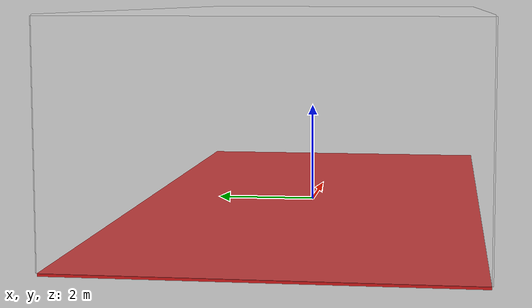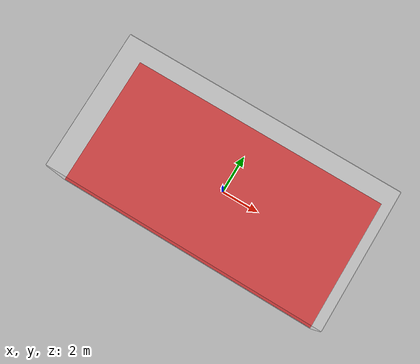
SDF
<!-- models/arena_walls/model.sdf -->
<sdf version="1.9">
  <model name="arena_walls">
    <static>true</static>

    <!-- Floor -->
    <link name="floor">
      <collision name="floor_col">
        <geometry><box><size>14 7 0.05</size></box></geometry>
      </collision>
      <visual name="floor_vis">
        <geometry><box><size>14 7 0.05</size></box></geometry>
        <material>
          <ambient>0.8 0.1 0.1 1</ambient>  <!-- red carpet -->
          <diffuse>0.8 0.1 0.1 1</diffuse>
        </material>
      </visual>
      <pose>0 0 -0.025 0 0 0</pose>
    </link>

    <!-- Ceiling (transparent, for realism) -->
    <link name="ceiling">
      <pose>0 0 4 0 0 0</pose>
      <collision name="ceiling_col">
        <geometry><box><size>14 7 0.05</size></box></geometry>
      </collision>
      <visual name="ceiling_vis">
        <geometry><box><size>14 7 0.05</size></box></geometry>
        <material><ambient>1 1 1 0.1</ambient></material>
      </visual>
    </link>

    <!-- North wall -->
    <link name="wall_north">
      <pose>0 3.5 2 0 0 0</pose>
      <collision name="col">
        <geometry><box><size>14 0.05 4</size></box></geometry>
      </collision>
      <visual name="vis">
        <geometry><box><size>14 0.05 4</size></box></geometry>
        <material><ambient>0.9 0.9 0.9 0.1</ambient><diffuse>0.9 0.9 0.9 0.1</diffuse></material>
      </visual>
    </link>

    <!-- South wall -->
    <link name="wall_south">
      <pose>0 -3.5 2 0 0 0</pose>
      <collision name="col">
        <geometry><box><size>14 0.05 4</size></box></geometry>
      </collision>
      <visual name="vis">
        <geometry><box><size>14 0.05 4</size></box></geometry>
        <material><ambient>0.9 0.9 0.9 0.1</ambient><diffuse>0.9 0.9 0.9 0.1</diffuse></material>
      </visual>
    </link>

    <!-- East wall -->
    <link name="wall_east">
      <pose>7 0 2 0 0 0</pose>
      <collision name="col">
        <geometry><box><size>0.05 7 4</size></box></geometry>
      </collision>
      <visual name="vis">
        <geometry><box><size>0.05 7 4</size></box></geometry>
        <material><ambient>0.9 0.9 0.9 0.1</ambient><diffuse>0.9 0.9 0.9 0.1</diffuse></material>
      </visual>
    </link>

    <!-- West wall -->
    <link name="wall_west">
      <pose>-7 0 2 0 0 0</pose>
      <collision name="col">
        <geometry><box><size>0.05 7 4</size></box></geometry>
      </collision>
      <visual name="vis">
        <geometry><box><size>0.05 7 4</size></box></geometry>
        <material><ambient>0.9 0.9 0.9 0.1</ambient><diffuse>0.9 0.9 0.9 0.1</diffuse></material>
      </visual>
    </link>

  </model>
</sdf>
